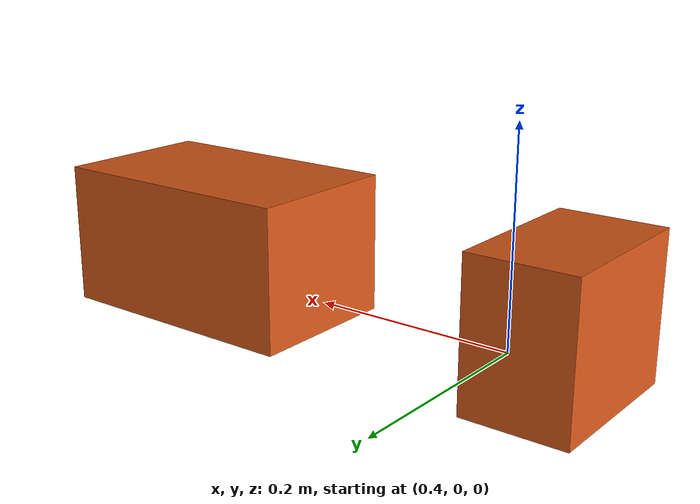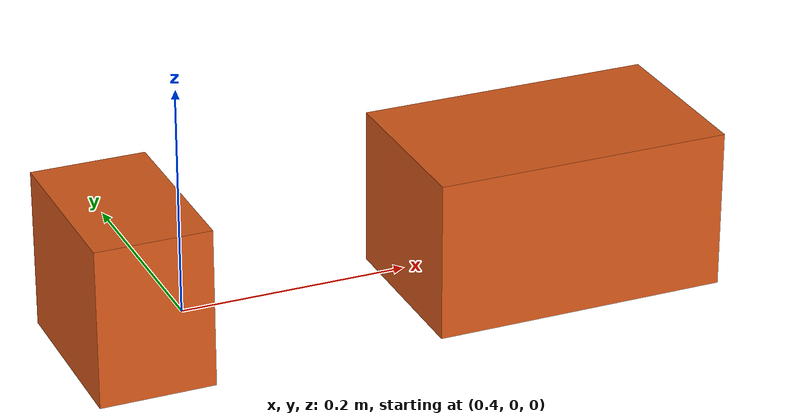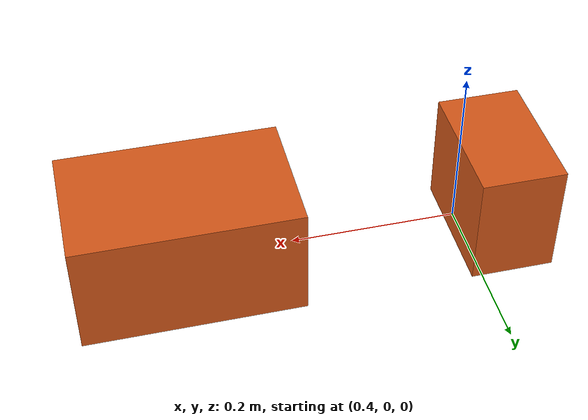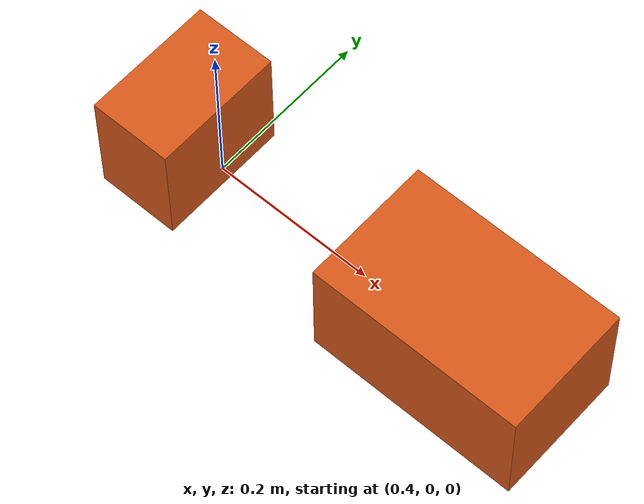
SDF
<?xml version="1.0"?>
<sdf version="1.7">
  <model name="scene_shelf_gap">
    <static>true</static>
    <link name="shelf_big"><pose>0.73 0.0 0.041 0 0 0</pose>
      <visual name="shelf_big_v"><geometry><box><size>0.26 0.16 0.14</size></box></geometry>
        <material><diffuse>0.85 0.35 0.1 1.0</diffuse></material></visual>
      <collision name="shelf_big_c"><geometry><box><size>0.26 0.16 0.14</size></box></geometry></collision>
    </link>
    <link name="shelf_small"><pose>0.35 0.0 0.041 0 0 0</pose>
      <visual name="shelf_small_v"><geometry><box><size>0.10 0.16 0.14</size></box></geometry>
        <material><diffuse>0.85 0.35 0.1 1.0</diffuse></material></visual>
      <collision name="shelf_small_c"><geometry><box><size>0.10 0.16 0.14</size></box></geometry></collision>
    </link>
  </model>
</sdf>
